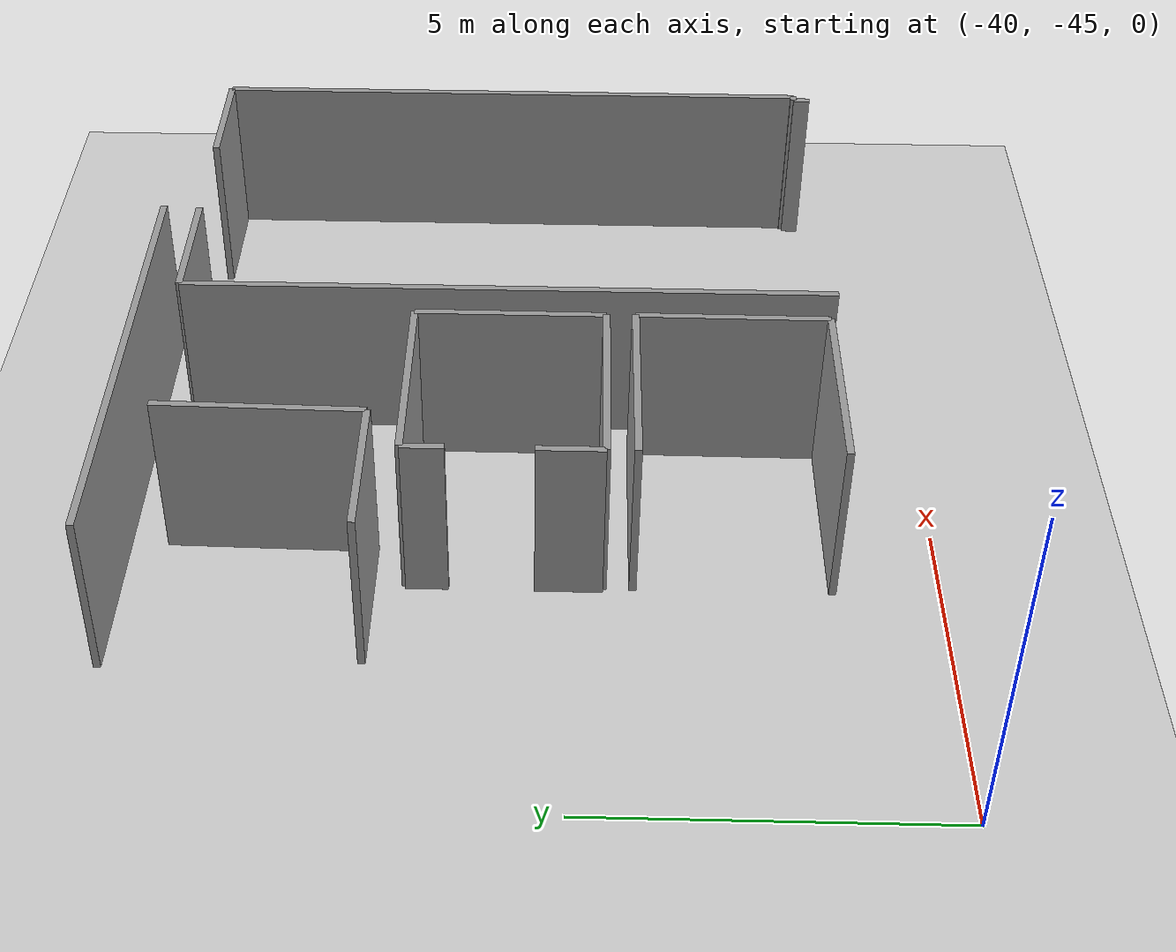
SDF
<sdf version="1.6">
 <world name="default">
  <model name="ground_plane">
   <static>1</static>
   <link name="link">
    <collision name="collision">
     <geometry><plane><normal>0 0 1</normal><size>100 100</size></plane></geometry>
     <surface><friction><ode><mu>100</mu><mu2>50</mu2></ode></friction></surface>
    </collision>
    <visual name="visual">
     <cast_shadows>0</cast_shadows>
     <geometry><plane><normal>0 0 1</normal><size>100 100</size></plane></geometry>
     <material>
      <script><uri>file://media/materials/scripts/gazebo.material</uri><name>Gazebo/Grey</name></script>
     </material>
    </visual>
   </link>
  </model>
  <model name="50015849">
   <static>1</static>
   <link name="Wall_80">
    <collision name="Wall_80_Collision">
     <geometry><box><size>6.95512826103 0.1 2.5</size></box></geometry>
     <pose>3.47756413052 0 1.25 0 0 0</pose>
    </collision>
    <visual name="Wall_80_Visual">
     <pose>3.47756413052 0 1.25 0 0 0</pose>
     <geometry><box><size>6.95512826103 0.1 2.5</size></box></geometry>
     <material>
      <script><uri>file://media/materials/scripts/gazebo.material</uri><name>Gazebo/Grey</name></script>
      <ambient>1 1 1 1</ambient>
     </material>
    </visual>
    <pose>95.2776137222 -77.6431887316 0 0 0 -3.13918213963</pose>
   </link>
   <link name="Wall_93">
    <collision name="Wall_93_Collision">
     <geometry><box><size>2.15816647298 0.1 2.5</size></box></geometry>
     <pose>1.07908323649 0 1.25 0 0 0</pose>
    </collision>
    <visual name="Wall_93_Visual">
     <pose>1.07908323649 0 1.25 0 0 0</pose>
     <geometry><box><size>2.15816647298 0.1 2.5</size></box></geometry>
     <material>
      <script><uri>file://media/materials/scripts/gazebo.material</uri><name>Gazebo/Grey</name></script>
      <ambient>1 1 1 1</ambient>
     </material>
    </visual>
    <pose>90.6343551347 -81.072986721 0 0 0 3.14159265359</pose>
   </link>
   <link name="Wall_97">
    <collision name="Wall_97_Collision">
     <geometry><box><size>2.86843217614 0.1 2.5</size></box></geometry>
     <pose>1.43421608807 0 1.25 0 0 0</pose>
    </collision>
    <visual name="Wall_97_Visual">
     <pose>1.43421608807 0 1.25 0 0 0</pose>
     <geometry><box><size>2.86843217614 0.1 2.5</size></box></geometry>
     <material>
      <script><uri>file://media/materials/scripts/gazebo.material</uri><name>Gazebo/Grey</name></script>
      <ambient>1 1 1 1</ambient>
     </material>
    </visual>
    <pose>90.6894777953 -78.2050842399 0 0 0 -1.5900145096</pose>
   </link>
   <link name="Wall_105">
    <collision name="Wall_105_Collision">
     <geometry><box><size>2.84580261261 0.1 2.5</size></box></geometry>
     <pose>1.42290130631 0 1.25 0 0 0</pose>
    </collision>
    <visual name="Wall_105_Visual">
     <pose>1.42290130631 0 1.25 0 0 0</pose>
     <geometry><box><size>2.84580261261 0.1 2.5</size></box></geometry>
     <material>
      <script><uri>file://media/materials/scripts/gazebo.material</uri><name>Gazebo/Grey</name></script>
      <ambient>1 1 1 1</ambient>
     </material>
    </visual>
    <pose>92.7734699969 -84.1956727441 0 0 0 3.14159265359</pose>
   </link>
   <link name="Wall_106">
    <collision name="Wall_106_Collision">
     <geometry><box><size>0.916763512355 0.1 2.5</size></box></geometry>
     <pose>0.458381756177 0 1.25 0 0 0</pose>
    </collision>
    <visual name="Wall_106_Visual">
     <pose>0.458381756177 0 1.25 0 0 0</pose>
     <geometry><box><size>0.916763512355 0.1 2.5</size></box></geometry>
     <material>
      <script><uri>file://media/materials/scripts/gazebo.material</uri><name>Gazebo/Grey</name></script>
      <ambient>1 1 1 1</ambient>
     </material>
    </visual>
    <pose>89.9276673843 -84.1956727441 0 0 0 1.57079632679</pose>
   </link>
   <link name="Wall_107">
    <collision name="Wall_107_Collision">
     <geometry><box><size>0.582471247944 0.1 2.5</size></box></geometry>
     <pose>0.291235623972 0 1.25 0 0 0</pose>
    </collision>
    <visual name="Wall_107_Visual">
     <pose>0.291235623972 0 1.25 0 0 0</pose>
     <geometry><box><size>0.582471247944 0.1 2.5</size></box></geometry>
     <material>
      <script><uri>file://media/materials/scripts/gazebo.material</uri><name>Gazebo/Grey</name></script>
      <ambient>1 1 1 1</ambient>
     </material>
    </visual>
    <pose>89.9276673843 -82.1233655306 0 0 0 1.57079632679</pose>
   </link>
   <link name="Wall_108">
    <collision name="Wall_108_Collision">
     <geometry><box><size>2.85545542876 0.1 2.5</size></box></geometry>
     <pose>1.42772771438 0 1.25 0 0 0</pose>
    </collision>
    <visual name="Wall_108_Visual">
     <pose>1.42772771438 0 1.25 0 0 0</pose>
     <geometry><box><size>2.85545542876 0.1 2.5</size></box></geometry>
     <material>
      <script><uri>file://media/materials/scripts/gazebo.material</uri><name>Gazebo/Grey</name></script>
      <ambient>1 1 1 1</ambient>
     </material>
    </visual>
    <pose>89.9276673843 -81.5408942826 0 0 0 0.0</pose>
   </link>
   <link name="Wall_109">
    <collision name="Wall_109_Collision">
     <geometry><box><size>2.65479601036 0.1 2.5</size></box></geometry>
     <pose>1.32739800518 0 1.25 0 0 0</pose>
    </collision>
    <visual name="Wall_109_Visual">
     <pose>1.32739800518 0 1.25 0 0 0</pose>
     <geometry><box><size>2.65479601036 0.1 2.5</size></box></geometry>
     <material>
      <script><uri>file://media/materials/scripts/gazebo.material</uri><name>Gazebo/Grey</name></script>
      <ambient>1 1 1 1</ambient>
     </material>
    </visual>
    <pose>92.783122813 -81.5408942826 0 0 0 -1.57443232646</pose>
   </link>
   <link name="Wall_110">
    <collision name="Wall_110_Collision">
     <geometry><box><size>2.84656467704 0.1 2.5</size></box></geometry>
     <pose>1.42328233852 0 1.25 0 0 0</pose>
    </collision>
    <visual name="Wall_110_Visual">
     <pose>1.42328233852 0 1.25 0 0 0</pose>
     <geometry><box><size>2.84656467704 0.1 2.5</size></box></geometry>
     <material>
      <script><uri>file://media/materials/scripts/gazebo.material</uri><name>Gazebo/Grey</name></script>
      <ambient>1 1 1 1</ambient>
     </material>
    </visual>
    <pose>92.7663573955 -87.2822877174 0 0 0 3.14159265359</pose>
   </link>
   <link name="Wall_113">
    <collision name="Wall_113_Collision">
     <geometry><box><size>2.86333009456 0.1 2.5</size></box></geometry>
     <pose>1.43166504728 0 1.25 0 0 0</pose>
    </collision>
    <visual name="Wall_113_Visual">
     <pose>1.43166504728 0 1.25 0 0 0</pose>
     <geometry><box><size>2.86333009456 0.1 2.5</size></box></geometry>
     <material>
      <script><uri>file://media/materials/scripts/gazebo.material</uri><name>Gazebo/Grey</name></script>
      <ambient>1 1 1 1</ambient>
     </material>
    </visual>
    <pose>89.9197927185 -84.5967726571 0 0 0 0.0</pose>
   </link>
   <link name="Wall_114">
    <collision name="Wall_114_Collision">
     <geometry><box><size>2.68556739225 0.1 2.5</size></box></geometry>
     <pose>1.34278369612 0 1.25 0 0 0</pose>
    </collision>
    <visual name="Wall_114_Visual">
     <pose>1.34278369612 0 1.25 0 0 0</pose>
     <geometry><box><size>2.68556739225 0.1 2.5</size></box></geometry>
     <material>
      <script><uri>file://media/materials/scripts/gazebo.material</uri><name>Gazebo/Grey</name></script>
      <ambient>1 1 1 1</ambient>
     </material>
    </visual>
    <pose>92.783122813 -84.5967726571 0 0 0 -1.57703915148</pose>
   </link>
   <link name="Wall_115">
    <collision name="Wall_115_Collision">
     <geometry><box><size>9.26797360717 0.1 2.5</size></box></geometry>
     <pose>4.63398680358 0 1.25 0 0 0</pose>
    </collision>
    <visual name="Wall_115_Visual">
     <pose>4.63398680358 0 1.25 0 0 0</pose>
     <geometry><box><size>9.26797360717 0.1 2.5</size></box></geometry>
     <material>
      <script><uri>file://media/materials/scripts/gazebo.material</uri><name>Gazebo/Grey</name></script>
      <ambient>1 1 1 1</ambient>
     </material>
    </visual>
    <pose>93.3559412448 -87.4425752697 0 0 0 1.57079632679</pose>
   </link>
   <link name="Wall_116">
    <collision name="Wall_116_Collision">
     <geometry><box><size>1.89474620079 0.1 2.5</size></box></geometry>
     <pose>0.947373100396 0 1.25 0 0 0</pose>
    </collision>
    <visual name="Wall_116_Visual">
     <pose>0.947373100396 0 1.25 0 0 0</pose>
     <geometry><box><size>1.89474620079 0.1 2.5</size></box></geometry>
     <material>
      <script><uri>file://media/materials/scripts/gazebo.material</uri><name>Gazebo/Grey</name></script>
      <ambient>1 1 1 1</ambient>
     </material>
    </visual>
    <pose>93.3559412448 -78.1746016626 0 0 0 0.0</pose>
   </link>
   <link name="Wall_117">
    <collision name="Wall_117_Collision">
     <geometry><box><size>1.77205382715 0.1 2.5</size></box></geometry>
     <pose>0.886026913576 0 1.25 0 0 0</pose>
    </collision>
    <visual name="Wall_117_Visual">
     <pose>0.886026913576 0 1.25 0 0 0</pose>
     <geometry><box><size>1.77205382715 0.1 2.5</size></box></geometry>
     <material>
      <script><uri>file://media/materials/scripts/gazebo.material</uri><name>Gazebo/Grey</name></script>
      <ambient>1 1 1 1</ambient>
     </material>
    </visual>
    <pose>96.9056373716 -78.1746016626 0 0 0 0.0</pose>
   </link>
   <link name="Wall_118">
    <collision name="Wall_118_Collision">
     <geometry><box><size>9.02055668807 0.1 2.5</size></box></geometry>
     <pose>4.51027834403 0 1.25 0 0 0</pose>
    </collision>
    <visual name="Wall_118_Visual">
     <pose>4.51027834403 0 1.25 0 0 0</pose>
     <geometry><box><size>9.02055668807 0.1 2.5</size></box></geometry>
     <material>
      <script><uri>file://media/materials/scripts/gazebo.material</uri><name>Gazebo/Grey</name></script>
      <ambient>1 1 1 1</ambient>
     </material>
    </visual>
    <pose>98.6776911988 -78.1746016626 0 0 0 -1.57079632679</pose>
   </link>
   <link name="Wall_119">
    <collision name="Wall_119_Collision">
     <geometry><box><size>0.087129366788 0.1 2.5</size></box></geometry>
     <pose>0.043564683394 0 1.25 0 0 0</pose>
    </collision>
    <visual name="Wall_119_Visual">
     <pose>0.043564683394 0 1.25 0 0 0</pose>
     <geometry><box><size>0.087129366788 0.1 2.5</size></box></geometry>
     <material>
      <script><uri>file://media/materials/scripts/gazebo.material</uri><name>Gazebo/Grey</name></script>
      <ambient>1 1 1 1</ambient>
     </material>
    </visual>
    <pose>98.6776911988 -87.1951583506 0 0 0 3.14159265359</pose>
   </link>
   <link name="Wall_120">
    <collision name="Wall_120_Collision">
     <geometry><box><size>0.248271007007 0.1 2.5</size></box></geometry>
     <pose>0.124135503504 0 1.25 0 0 0</pose>
    </collision>
    <visual name="Wall_120_Visual">
     <pose>0.124135503504 0 1.25 0 0 0</pose>
     <geometry><box><size>0.248271007007 0.1 2.5</size></box></geometry>
     <material>
      <script><uri>file://media/materials/scripts/gazebo.material</uri><name>Gazebo/Grey</name></script>
      <ambient>1 1 1 1</ambient>
     </material>
    </visual>
    <pose>98.590561832 -87.1951583506 0 0 0 -1.65376762071</pose>
   </link>
   <pose>-126.05 43.7425752697 0 0 0 0</pose>
  </model>
 </world>
</sdf>
